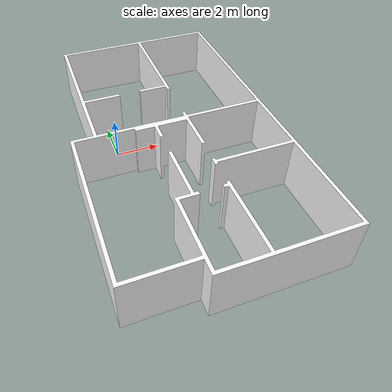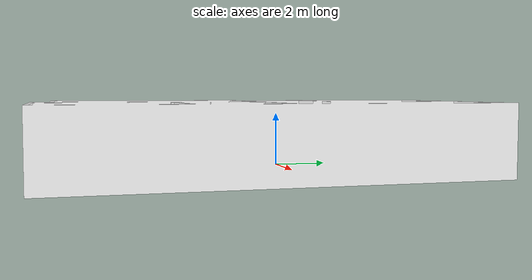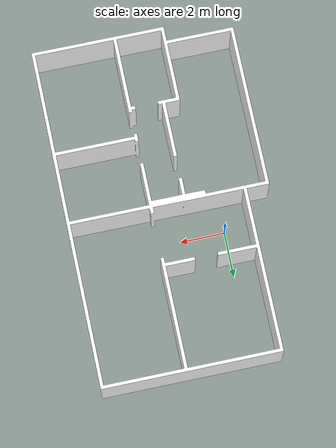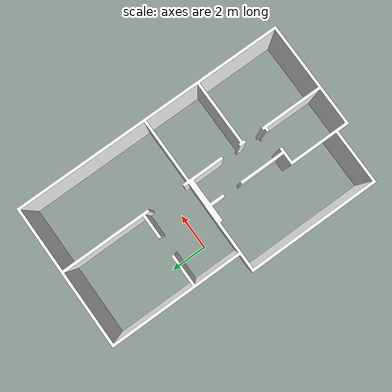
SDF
<?xml version="1.0" ?>
<sdf version="1.5">
  <model name="apartment_4">
    <link name="link">
      <pose>0 0 0 0 0 0</pose>
      <collision name="collision">
        <geometry>
          <mesh>
            <uri>model://apartment_4/meshes/model.dae</uri>
          </mesh>
        </geometry>
      </collision>
      <visual name="visual">
        <geometry>
          <mesh>
            <uri>model://apartment_4/meshes/model.dae</uri>
          </mesh>
        </geometry>
      </visual>
    </link>
    <static>1</static>
  </model>
</sdf>
